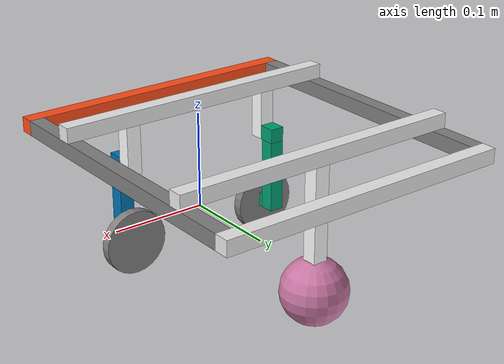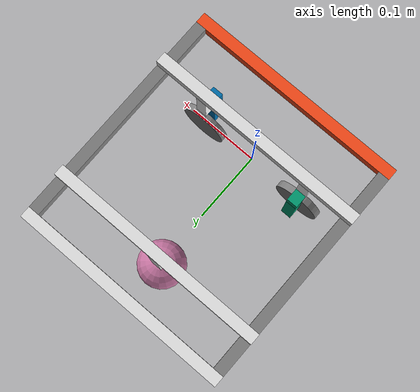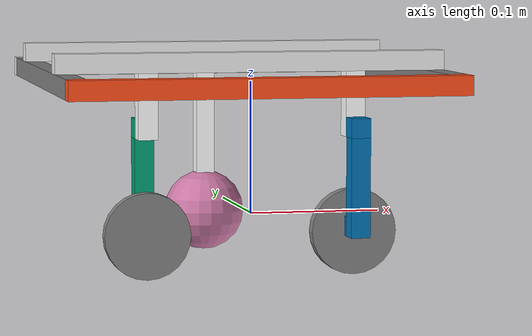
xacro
<?xml version="1.0"?>
<robot xmlns:xacro="http://www.ros.org/wiki/xacro" name="robot" >
	<xacro:include filename="robot_core.xacro" />
	<gazebo>
        <plugin name="gazebo_ros_control" filename="libgazebo_ros_control.so">
          <robotNamespace>/</robotNamespace>
        </plugin>
    </gazebo>
</robot>

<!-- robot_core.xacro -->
<robot xmlns:xacro="http://www.ros.org/wiki/xacro" >

	<xacro:include filename="inertial_macros.xacro" />

    <material name="white">
        <color rgba="1 1 1 1" />
    </material>

    <material name="orange">
        <color rgba="1 0.3 0.1 1"/>
    </material>

    <material name="blue">
        <color rgba="0.2 0.2 1 1"/>
    </material>

    <material name="black">
        <color rgba="0 0 0 1"/>
    </material>

    <material name="red">
        <color rgba="1 0 0 1"/>
    </material>

    <material name="grey">
        <color rgba="0.5 0.5 0.5 1"/>
    </material>

    <!-- base_link -->
    <xacro:property name="big_bar_length" value="0.3"/>
    <xacro:property name="chassis_thickness" value="0.015"/>
    <xacro:property name="front_base_length" value="0.18"/>
    <xacro:property name="base_to_back_distance" value="0.065"/>
    <xacro:property name="a" value="0.08"/>

	<!-- Create fixed odom frame -->

	<link name="odom"></link>

	<joint name="world_joint" type="floating">
		<parent link="odom"></parent>
		<child link="base_link"></child>
		<origin xyz="0 0 0.1"></origin>
	</joint>

    <link name="base_link">
		<visual>
            <geometry>
                <box size="${big_bar_length} ${chassis_thickness} ${chassis_thickness}"/>
            </geometry>
            <material name="orange"/>
            <origin xyz="0 ${-base_to_back_distance - chassis_thickness/2} 0"/>
        </visual>
        <visual>
            <geometry>
                <box size="${big_bar_length} ${chassis_thickness} ${chassis_thickness}"/>
            </geometry>
            <origin xyz="0 ${big_bar_length - base_to_back_distance + chassis_thickness/2} 0"/>
        </visual>
        <visual>
            <geometry>
                <box size="${chassis_thickness} ${big_bar_length} ${chassis_thickness}"/>
            </geometry>
            <material name="grey"/>
            <origin xyz="${-big_bar_length/2+chassis_thickness/2} ${big_bar_length/2 - base_to_back_distance} 0"/>
        </visual>
        <visual>
            <geometry>
                <box size="${chassis_thickness} ${big_bar_length} ${chassis_thickness}"/>
            </geometry>
            <material name="grey"/>
            <origin xyz="${big_bar_length/2-chassis_thickness/2} ${big_bar_length/2 - base_to_back_distance} 0"/>
        </visual>
        <visual>
            <geometry>
                <box size="${big_bar_length} ${chassis_thickness} ${chassis_thickness}"/>
            </geometry>
            <origin xyz="0 0 ${chassis_thickness}"/>
        </visual>
        <visual>
            <geometry>
                <box size="${big_bar_length} ${chassis_thickness} ${chassis_thickness}"/>
            </geometry>
            <origin xyz="0 ${front_base_length} ${chassis_thickness}"/>
        </visual>
    </link>

    <gazebo reference="base_link">
		<material>Gazebo/White</material>
    </gazebo>

    <xacro:property name="a" value="0.08"/>
    <xacro:property name="l1" value="0.05"/>
    <xacro:property name="l2" value="0.017"/>
    <xacro:property name="l3" value="0.076"/>
    <xacro:property name="thickness" value="0.015"/>
    <xacro:property name="motor_side" value="0.02"/>
    <xacro:property name="wheel_thickness" value="0.01"/>
    <xacro:property name="l4" value="${l2-thickness/2-wheel_thickness/2}"/>
    <xacro:property name="l_tot" value="${l1+l3+thickness}"/>

    <!-- Left_wheel_base-->

    <link name="left_wheel_base">
        <visual>
            <geometry>
                <box size="${thickness} ${thickness} ${l1}" />
            </geometry>
            <origin xyz="${0} 0 ${-l1/2}"/>
            <material name="white"/>
        </visual>
        <visual>
            <geometry>
                <box size="${l2} ${thickness} ${thickness}"/>
            </geometry>
            <origin xyz="${l2/2+thickness/2} 0 ${-l1+thickness/2}"/>
        </visual>
        <visual>
            <geometry>
                <box size="${thickness} ${thickness} ${l3}"/>
            </geometry>
            <origin xyz="${l2} ${0} ${-l3/2-l1}"/>
        </visual>
        <visual>
            <geometry>
                <box size="${l4} ${thickness} ${thickness}"/>
            </geometry>
            <origin xyz="${wheel_thickness/2+l4/2} 0 ${-l_tot+3*thickness/2}"/>

        </visual>
    </link>

    <gazebo reference="left_wheel_base_joint">
		<material>Gazebo/Blue</material>
    </gazebo>

    <joint name="left_wheel_base_joint" type="continuous">
        <parent link="base_link"/>
        <child link="left_wheel_base"/>
        <origin xyz="${-a} ${0} ${thickness/2}" rpy="0.0 0.0 ${pi/2}"/>
        <axis xyz="0 0 1"/>
    </joint>

    <!-- Left_wheel-->

    <xacro:property name="wheel_radius" value="0.033"/>

    <link name="left_wheel">
        <visual>
            <geometry>
                <cylinder radius="${wheel_radius}" length="${wheel_thickness}"/>
            </geometry>
            <origin xyz="${0} 0 ${0}" rpy="${pi/2} 0 0"/>
			<material name="grey"/>
        </visual>
    </link>

    <joint name="left_wheel_joint" type="continuous">
        <parent link="left_wheel_base"/>
        <child link="left_wheel"/>
        <origin xyz="${0} 0 ${-l_tot-thickness+wheel_radius}" rpy="0 0 ${pi/2}"/>
        <axis xyz="0 1 0"/>
    </joint>

    <!-- right_wheel_base-->

    <link name="right_wheel_base">
<visual>
            <geometry>
                <box size="${thickness} ${thickness} ${l1}" />
            </geometry>
            <origin xyz="${0} 0 ${-l1/2}"/>
            <material name="white"/>
        </visual>
        <visual>
            <geometry>
                <box size="${l2} ${thickness} ${thickness}"/>
            </geometry>
            <origin xyz="${l2/2+thickness/2} 0 ${-l1+thickness/2}"/>
        </visual>
        <visual>
            <geometry>
                <box size="${thickness} ${thickness} ${l3}"/>
            </geometry>
            <origin xyz="${l2} ${0} ${-l3/2-l1}"/>
        </visual>
        <visual>
            <geometry>
                <box size="${l4} ${thickness} ${thickness}"/>
            </geometry>
            <origin xyz="${wheel_thickness/2+l4/2} 0 ${-l_tot+3*thickness/2}"/>

        </visual>
    </link>

    <gazebo reference="right_wheel_base_joint">
		<material>Gazebo/Blue</material>
    </gazebo>

    <joint name="right_wheel_base_joint" type="continuous">
        <parent link="base_link"/>
        <child link="right_wheel_base"/>
        <origin xyz="${a} ${0} ${thickness/2}" rpy="0.0 0.0 ${-pi/2}"/>
        <axis xyz="0 0 1"/>
    </joint>

    <!-- right_wheel-->

    <link name="right_wheel">
        <visual>
            <geometry>
                <cylinder radius="${wheel_radius}" length="${wheel_thickness}"/>
            </geometry>
            <origin xyz="${0} 0 ${0}" rpy="${pi/2} 0 0"/>
			<material name="grey"/>
        </visual>
    </link>

    <gazebo reference="right_wheel">
		<material>Gazebo/Black</material>
    </gazebo>

    <joint name="right_wheel_joint" type="continuous">
        <parent link="right_wheel_base"/>
        <child link="right_wheel"/>
        <origin xyz="${0} 0 ${-l_tot-thickness+wheel_radius}" rpy="0 0 ${pi/2}"/>
        <axis xyz="0 1 0"/>

    </joint>

    <!-- castor wheel-->

    <link name="castor_wheel">
		<visual>
			<geometry>
				<box size="${thickness} ${thickness} ${l1+l3}"/>
			</geometry>
            <origin xyz="0 0 ${-(l1+l3)/2}"/>
			<material name="white"/>
		</visual>
		<visual>
			<geometry>
				<sphere radius="${wheel_radius}"/>
			</geometry>
			<origin xyz="0 0 ${-(l1+l3)}"/>
		</visual>
    </link>

	<joint name="castor_joint" type="fixed">
		<parent link="base_link"></parent>
		<child link="castor_wheel"></child>
        <origin xyz="0 ${front_base_length} ${thickness/2}" />
	</joint>

</robot>
